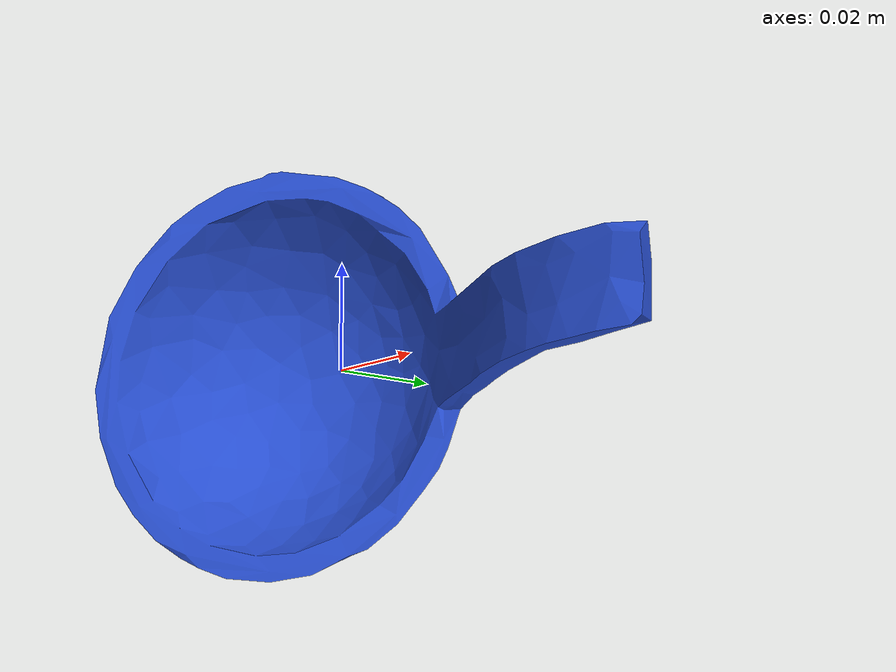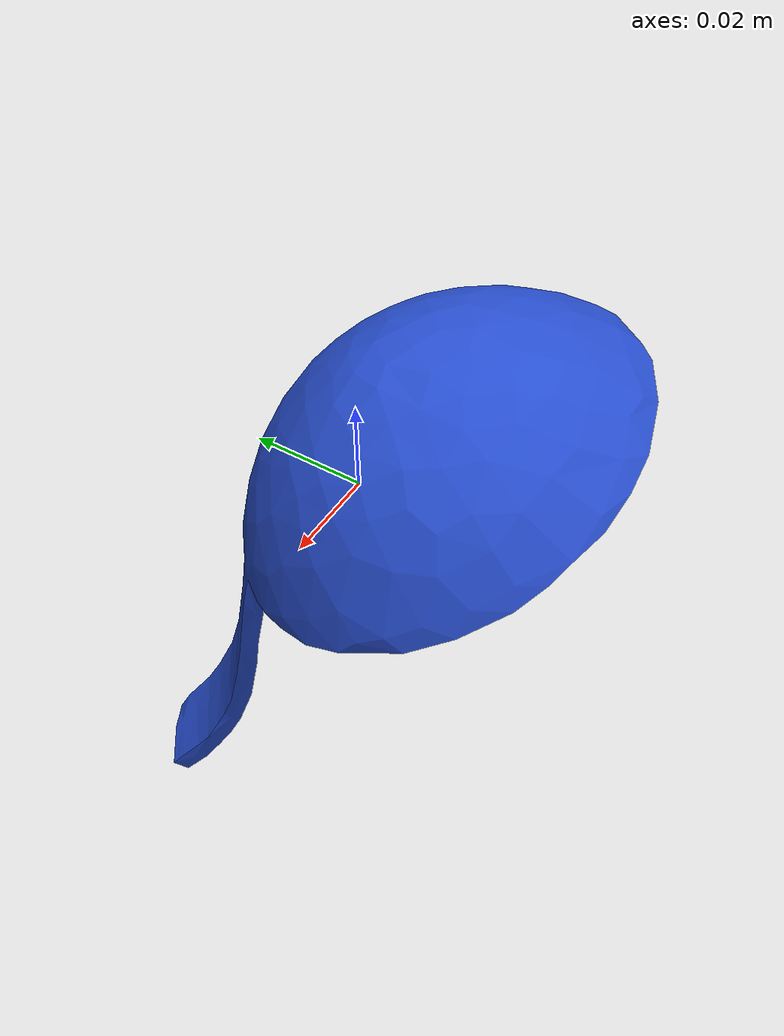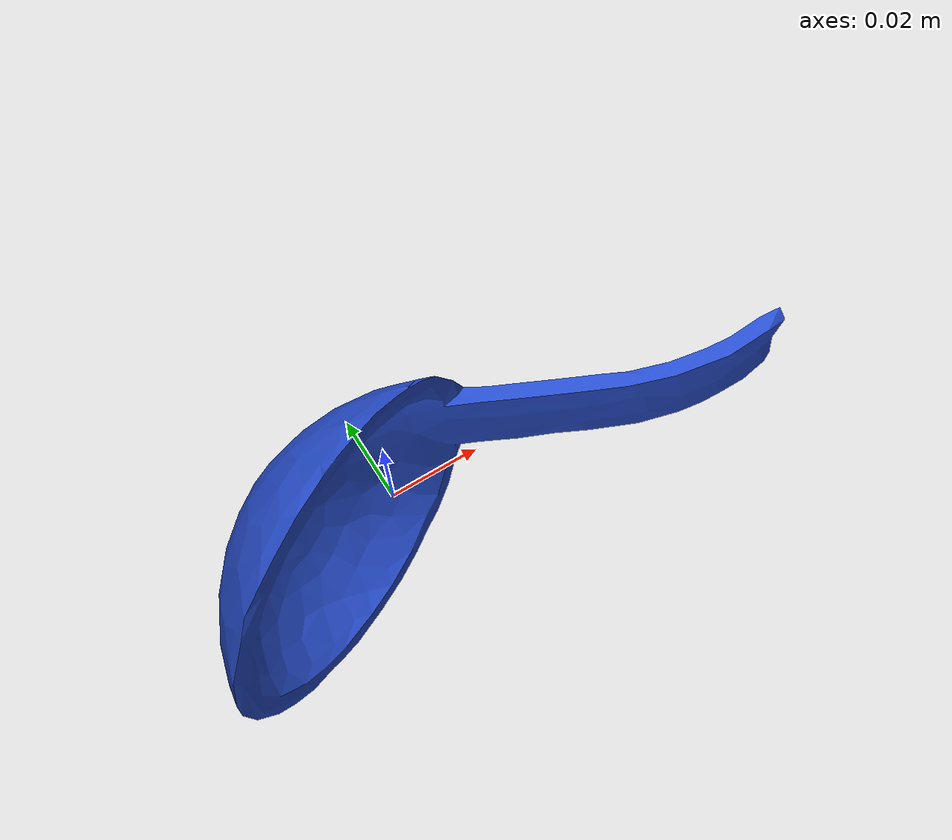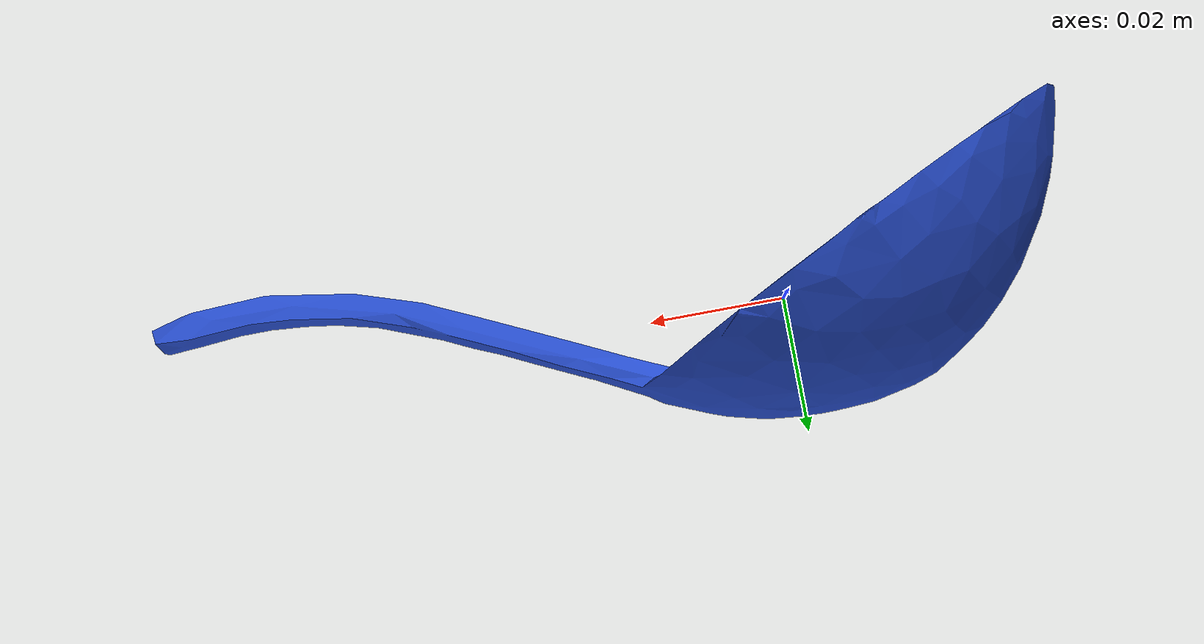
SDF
<?xml version='1.0'?>
<sdf version='1.6'>
    <model name='ladle'>
        <static>false</static>
        <pose>0 0 0 1.57079632679 0 0</pose>
        <link name='link'>
            <pose>0 0 0 0 0 0</pose>
            <inertial>
                <mass>0.01</mass>
                <pose>-0.012176396154706 -0.000132104085343 -0.001143937015664 0 0 0</pose>
                <inertia>
                    <ixx>3.203277790557601e-06</ixx>
                    <iyy>2.125554247666079e-04</iyy>
                    <izz>2.094359977977182e-04</izz>
                    <ixy>0</ixy>
                    <ixz>0</ixz>
                    <iyz>0</iyz>
                </inertia>
            </inertial>

            <collision name='collision'>
                <pose>0 0 0 0 0 0</pose>
                <geometry>
                    <mesh>
                        <uri>model://ladle/mesh.dae</uri>
                    </mesh>
                </geometry>
                <surface>
                    <friction>
                        <ode>
                            <mu>0.8</mu>
                            <mu2>0.8</mu2>
                        </ode>
                        <bullet>
                            <friction>0.8</friction>
                            <friction2>0.8</friction2>
                        </bullet>
                    </friction>
                </surface>
            </collision>
            <visual name='visual'>
                <pose>0 0 0 0 0 0</pose>
                <geometry>
                    <mesh>
                        <uri>model://ladle/mesh.dae</uri>
                    </mesh>
                </geometry>
                <material>
                    <script>
                        <name>Gazebo/Blue</name>
                        <uri>file://media/materials/scripts/gazebo.material</uri>
                    </script>
                </material>
            </visual>

        </link>
    </model>
</sdf>
